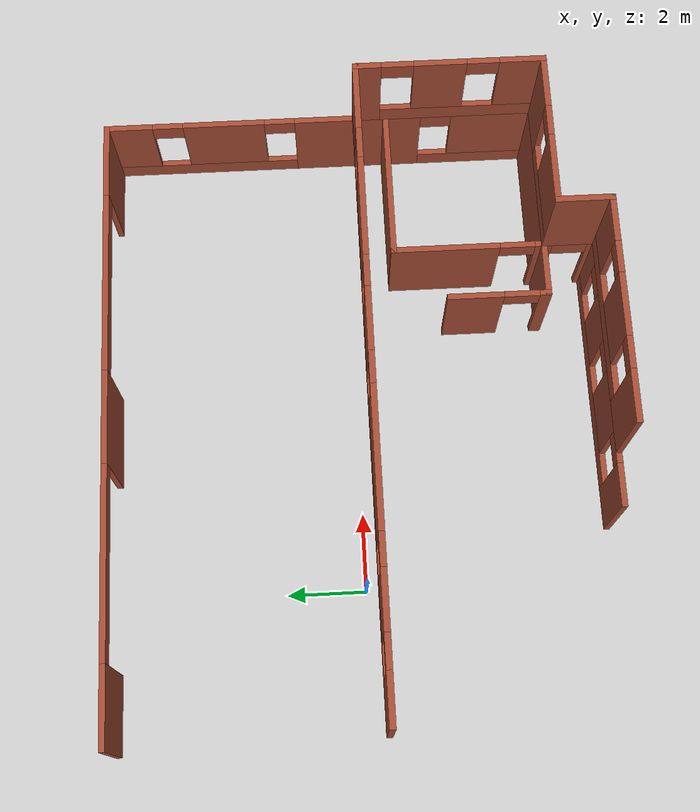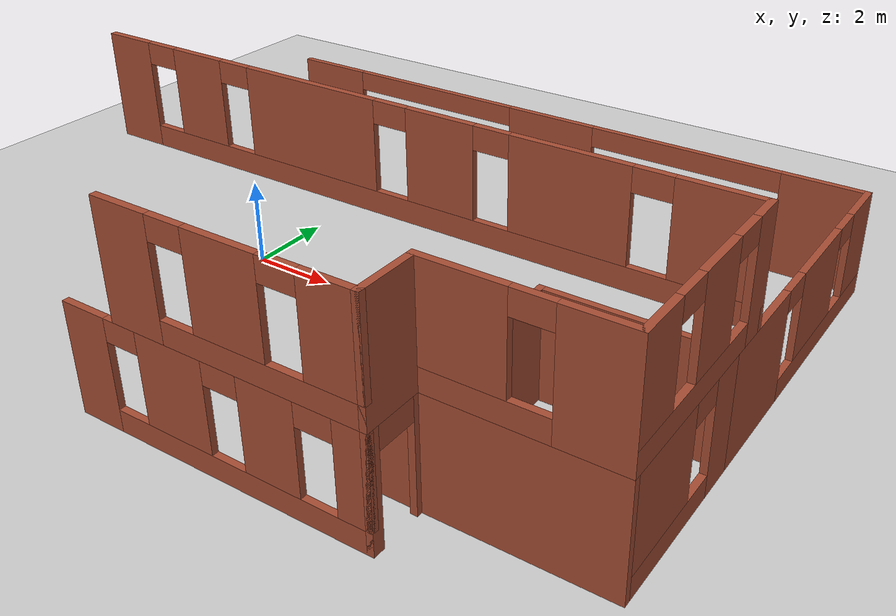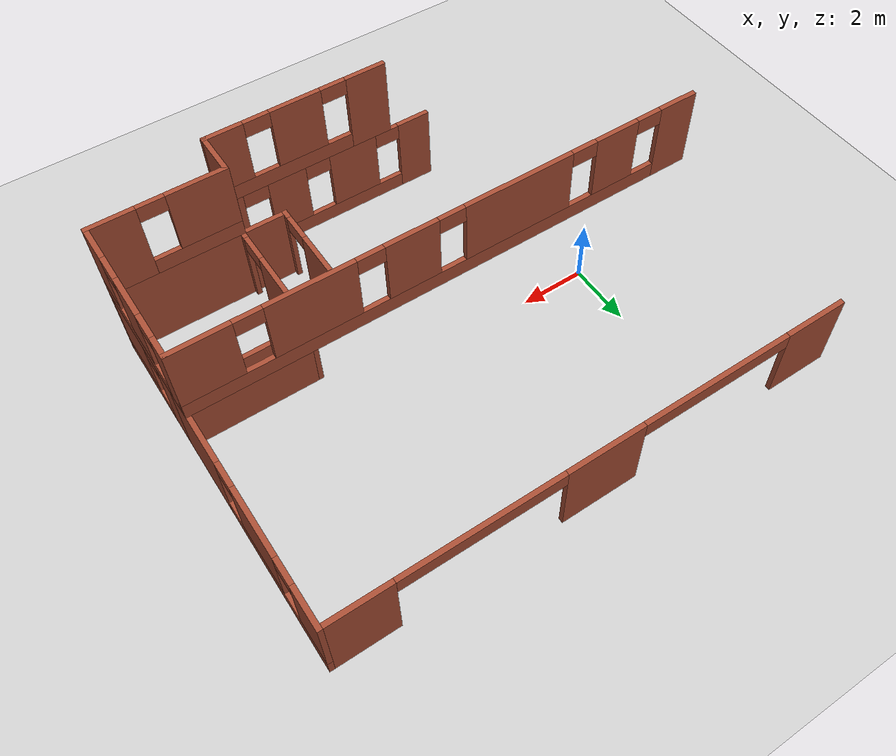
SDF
<sdf version="1.7">
 <world name="default">
  <model name="ground_plane">
   <static>1</static>
   <link name="link">
    <collision name="collision">
     <geometry><plane><normal>0 0 1</normal><size>100 100</size></plane></geometry>
     <surface>
      <contact><collide_bitmask>65535</collide_bitmask></contact>
      <friction><ode><mu>100</mu><mu2>50</mu2></ode></friction>
     </surface>
    </collision>
    <visual name="visual">
     <cast_shadows>0</cast_shadows>
     <geometry><plane><normal>0 0 1</normal><size>100 100</size></plane></geometry>
     <material>
      <script><uri>file://media/materials/scripts/gazebo.material</uri><name>Gazebo/Grey</name></script>
     </material>
    </visual>
   </link>
  </model>
  <model name="test_building">
   <link name="Wall_178">
    <collision name="Wall_178_Collision">
     <geometry><box><size>1.5 0.15 2.5</size></box></geometry>
     <pose>0 0 1.25 0 -0 0</pose>
    </collision>
    <visual name="Wall_178_Visual">
     <pose>0 0 1.25 0 -0 0</pose>
     <geometry><box><size>1.5 0.15 2.5</size></box></geometry>
     <material>
      <script><uri>file://media/materials/scripts/gazebo.material</uri><name>Gazebo/Bricks</name></script>
      <ambient>1 1 1 1</ambient>
     </material>
     <meta><layer>0</layer></meta>
    </visual>
    <pose>7.625 -4.95 0 0 -0 3.14159</pose>
   </link>
   <link name="Wall_181">
    <pose>6.95 -3.7 0 0 -0 -1.5708</pose>
    <visual name="Wall_181_Visual_0">
     <pose>-0.601522 0 1.25 0 -0 0</pose>
     <geometry><box><size>1.44713 0.15 2.5</size></box></geometry>
     <material>
      <script><uri>file://media/materials/scripts/gazebo.material</uri><name>Gazebo/Bricks</name></script>
      <ambient>1 1 1 1</ambient>
     </material>
     <meta><layer>0</layer></meta>
    </visual>
    <collision name="Wall_181_Collision_0">
     <geometry><box><size>1.44713 0.15 2.5</size></box></geometry>
     <pose>-0.601522 0 1.25 0 -0 0</pose>
    </collision>
    <visual name="Wall_181_Visual_1">
     <pose>1.17356 0 1.25 0 -0 0</pose>
     <geometry><box><size>0.303044 0.15 2.5</size></box></geometry>
     <material>
      <script><uri>file://media/materials/scripts/gazebo.material</uri><name>Gazebo/Bricks</name></script>
      <ambient>1 1 1 1</ambient>
     </material>
     <meta><layer>0</layer></meta>
    </visual>
    <collision name="Wall_181_Collision_1">
     <geometry><box><size>0.303044 0.15 2.5</size></box></geometry>
     <pose>1.17356 0 1.25 0 -0 0</pose>
    </collision>
    <visual name="Wall_181_Visual_2">
     <pose>0.572041 0 2.25 0 -0 0</pose>
     <geometry><box><size>0.9 0.15 0.5</size></box></geometry>
     <material>
      <script><uri>file://media/materials/scripts/gazebo.material</uri><name>Gazebo/Bricks</name></script>
      <ambient>1 1 1 1</ambient>
     </material>
     <meta><layer>0</layer></meta>
    </visual>
    <collision name="Wall_181_Collision_2">
     <geometry><box><size>0.9 0.15 0.5</size></box></geometry>
     <pose>0.572041 0 2.25 0 -0 0</pose>
    </collision>
   </link>
   <link name="Wall_190">
    <pose>4.85 -6.25 0 0 -0 0</pose>
    <visual name="Wall_190_Visual_0">
     <pose>-2.98077 0 1.25 0 -0 0</pose>
     <geometry><box><size>1.08846 0.15 2.5</size></box></geometry>
     <material>
      <script><uri>file://media/materials/scripts/gazebo.material</uri><name>Gazebo/Bricks</name></script>
      <ambient>1 1 1 1</ambient>
     </material>
     <meta><layer>0</layer></meta>
    </visual>
    <collision name="Wall_190_Collision_0">
     <geometry><box><size>1.08846 0.15 2.5</size></box></geometry>
     <pose>-2.98077 0 1.25 0 -0 0</pose>
    </collision>
    <visual name="Wall_190_Visual_1">
     <pose>0.54423 0 0.25 0 -0 0</pose>
     <geometry><box><size>5.96154 0.15 0.5</size></box></geometry>
     <material>
      <script><uri>file://media/materials/scripts/gazebo.material</uri><name>Gazebo/Bricks</name></script>
      <ambient>1 1 1 1</ambient>
     </material>
     <meta><layer>0</layer></meta>
    </visual>
    <collision name="Wall_190_Collision_1">
     <geometry><box><size>5.96154 0.15 0.5</size></box></geometry>
     <pose>0.54423 0 0.25 0 -0 0</pose>
    </collision>
    <visual name="Wall_190_Visual_2">
     <pose>-0.838263 0 1.5 0 -0 0</pose>
     <geometry><box><size>1.59655 0.15 2</size></box></geometry>
     <material>
      <script><uri>file://media/materials/scripts/gazebo.material</uri><name>Gazebo/Bricks</name></script>
      <ambient>1 1 1 1</ambient>
     </material>
     <meta><layer>0</layer></meta>
    </visual>
    <collision name="Wall_190_Collision_2">
     <geometry><box><size>1.59655 0.15 2</size></box></geometry>
     <pose>-0.838263 0 1.5 0 -0 0</pose>
    </collision>
    <visual name="Wall_190_Visual_3">
     <pose>1.38168 0 1.5 0 -0 0</pose>
     <geometry><box><size>1.24334 0.15 2</size></box></geometry>
     <material>
      <script><uri>file://media/materials/scripts/gazebo.material</uri><name>Gazebo/Bricks</name></script>
      <ambient>1 1 1 1</ambient>
     </material>
     <meta><layer>0</layer></meta>
    </visual>
    <collision name="Wall_190_Collision_3">
     <geometry><box><size>1.24334 0.15 2</size></box></geometry>
     <pose>1.38168 0 1.5 0 -0 0</pose>
    </collision>
    <visual name="Wall_190_Visual_4">
     <pose>3.16418 0 1.5 0 -0 0</pose>
     <geometry><box><size>0.721646 0.15 2</size></box></geometry>
     <material>
      <script><uri>file://media/materials/scripts/gazebo.material</uri><name>Gazebo/Bricks</name></script>
      <ambient>1 1 1 1</ambient>
     </material>
     <meta><layer>0</layer></meta>
    </visual>
    <collision name="Wall_190_Collision_4">
     <geometry><box><size>0.721646 0.15 2</size></box></geometry>
     <pose>3.16418 0 1.5 0 -0 0</pose>
    </collision>
    <visual name="Wall_190_Visual_5">
     <pose>-2.03654 0 2.25 0 -0 0</pose>
     <geometry><box><size>0.8 0.15 0.5</size></box></geometry>
     <material>
      <script><uri>file://media/materials/scripts/gazebo.material</uri><name>Gazebo/Bricks</name></script>
      <ambient>1 1 1 1</ambient>
     </material>
     <meta><layer>0</layer></meta>
    </visual>
    <collision name="Wall_190_Collision_5">
     <geometry><box><size>0.8 0.15 0.5</size></box></geometry>
     <pose>-2.03654 0 2.25 0 -0 0</pose>
    </collision>
    <visual name="Wall_190_Visual_6">
     <pose>0.360013 0 2.25 0 -0 0</pose>
     <geometry><box><size>0.8 0.15 0.5</size></box></geometry>
     <material>
      <script><uri>file://media/materials/scripts/gazebo.material</uri><name>Gazebo/Bricks</name></script>
      <ambient>1 1 1 1</ambient>
     </material>
     <meta><layer>0</layer></meta>
    </visual>
    <collision name="Wall_190_Collision_6">
     <geometry><box><size>0.8 0.15 0.5</size></box></geometry>
     <pose>0.360013 0 2.25 0 -0 0</pose>
    </collision>
    <visual name="Wall_190_Visual_7">
     <pose>2.40335 0 2.25 0 -0 0</pose>
     <geometry><box><size>0.8 0.15 0.5</size></box></geometry>
     <material>
      <script><uri>file://media/materials/scripts/gazebo.material</uri><name>Gazebo/Bricks</name></script>
      <ambient>1 1 1 1</ambient>
     </material>
     <meta><layer>0</layer></meta>
    </visual>
    <collision name="Wall_190_Collision_7">
     <geometry><box><size>0.8 0.15 0.5</size></box></geometry>
     <pose>2.40335 0 2.25 0 -0 0</pose>
    </collision>
   </link>
   <link name="Wall_191">
    <pose>8.3 -5.6 0 0 -0 1.5708</pose>
    <visual name="Wall_191_Visual_0">
     <pose>-0.587245 0 1.25 0 -0 0</pose>
     <geometry><box><size>0.27551 0.15 2.5</size></box></geometry>
     <material>
      <script><uri>file://media/materials/scripts/gazebo.material</uri><name>Gazebo/Bricks</name></script>
      <ambient>1 1 1 1</ambient>
     </material>
     <meta><layer>0</layer></meta>
    </visual>
    <collision name="Wall_191_Collision_0">
     <geometry><box><size>0.27551 0.15 2.5</size></box></geometry>
     <pose>-0.587245 0 1.25 0 -0 0</pose>
    </collision>
    <visual name="Wall_191_Visual_1">
     <pose>0.587755 0 1.25 0 -0 0</pose>
     <geometry><box><size>0.27449 0.15 2.5</size></box></geometry>
     <material>
      <script><uri>file://media/materials/scripts/gazebo.material</uri><name>Gazebo/Bricks</name></script>
      <ambient>1 1 1 1</ambient>
     </material>
     <meta><layer>0</layer></meta>
    </visual>
    <collision name="Wall_191_Collision_1">
     <geometry><box><size>0.27449 0.15 2.5</size></box></geometry>
     <pose>0.587755 0 1.25 0 -0 0</pose>
    </collision>
    <visual name="Wall_191_Visual_2">
     <pose>0.00051 0 2.25 0 -0 0</pose>
     <geometry><box><size>0.9 0.15 0.5</size></box></geometry>
     <material>
      <script><uri>file://media/materials/scripts/gazebo.material</uri><name>Gazebo/Bricks</name></script>
      <ambient>1 1 1 1</ambient>
     </material>
     <meta><layer>0</layer></meta>
    </visual>
    <collision name="Wall_191_Collision_2">
     <geometry><box><size>0.9 0.15 0.5</size></box></geometry>
     <pose>0.00051 0 2.25 0 -0 0</pose>
    </collision>
   </link>
   <link name="Wall_294">
    <pose>10.225 -4.95 2.5 0 -0 3.14159</pose>
    <visual name="Wall_294_Visual_0">
     <pose>-1.30227 0 1.25 0 -0 0</pose>
     <geometry><box><size>1.39531 0.15 2.5</size></box></geometry>
     <material>
      <script><uri>file://media/materials/scripts/gazebo.material</uri><name>Gazebo/Bricks</name></script>
      <ambient>1 1 1 1</ambient>
     </material>
     <meta><layer>1</layer></meta>
    </visual>
    <collision name="Wall_294_Collision_0">
     <geometry><box><size>1.39531 0.15 2.5</size></box></geometry>
     <pose>-1.30227 0 1.25 0 -0 0</pose>
    </collision>
    <visual name="Wall_294_Visual_1">
     <pose>0.697653 0 0.25 0 -0 0</pose>
     <geometry><box><size>2.60454 0.15 0.5</size></box></geometry>
     <material>
      <script><uri>file://media/materials/scripts/gazebo.material</uri><name>Gazebo/Bricks</name></script>
      <ambient>1 1 1 1</ambient>
     </material>
     <meta><layer>1</layer></meta>
    </visual>
    <collision name="Wall_294_Collision_1">
     <geometry><box><size>2.60454 0.15 0.5</size></box></geometry>
     <pose>0.697653 0 0.25 0 -0 0</pose>
    </collision>
    <visual name="Wall_294_Visual_2">
     <pose>1.09765 0 1.5 0 -0 0</pose>
     <geometry><box><size>1.80454 0.15 2</size></box></geometry>
     <material>
      <script><uri>file://media/materials/scripts/gazebo.material</uri><name>Gazebo/Bricks</name></script>
      <ambient>1 1 1 1</ambient>
     </material>
     <meta><layer>1</layer></meta>
    </visual>
    <collision name="Wall_294_Collision_2">
     <geometry><box><size>1.80454 0.15 2</size></box></geometry>
     <pose>1.09765 0 1.5 0 -0 0</pose>
    </collision>
    <visual name="Wall_294_Visual_3">
     <pose>-0.204615 0 2.25 0 -0 0</pose>
     <geometry><box><size>0.8 0.15 0.5</size></box></geometry>
     <material>
      <script><uri>file://media/materials/scripts/gazebo.material</uri><name>Gazebo/Bricks</name></script>
      <ambient>1 1 1 1</ambient>
     </material>
     <meta><layer>1</layer></meta>
    </visual>
    <collision name="Wall_294_Collision_3">
     <geometry><box><size>0.8 0.15 0.5</size></box></geometry>
     <pose>-0.204615 0 2.25 0 -0 0</pose>
    </collision>
   </link>
   <link name="Wall_329">
    <collision name="Wall_329_Collision">
     <geometry><box><size>1.45 0.15 2.5</size></box></geometry>
     <pose>0 0 1.25 0 -0 0</pose>
    </collision>
    <visual name="Wall_329_Visual">
     <pose>0 0 1.25 0 -0 0</pose>
     <geometry><box><size>1.45 0.15 2.5</size></box></geometry>
     <material>
      <script><uri>file://media/materials/scripts/gazebo.material</uri><name>Gazebo/Bricks</name></script>
      <ambient>1 1 1 1</ambient>
     </material>
     <meta><layer>1</layer></meta>
    </visual>
    <pose>8.3 -5.6 2.5 0 -0 1.5708</pose>
   </link>
   <link name="Wall_36">
    <pose>12.15 2.575 0 0 -0 1.5708</pose>
    <visual name="Wall_36_Visual_0">
     <pose>-2.51128 0 1.25 0 -0 0</pose>
     <geometry><box><size>2.47744 0.15 2.5</size></box></geometry>
     <material>
      <script><uri>file://media/materials/scripts/gazebo.material</uri><name>Gazebo/Bricks</name></script>
      <ambient>1 1 1 1</ambient>
     </material>
     <meta><layer>0</layer></meta>
    </visual>
    <collision name="Wall_36_Collision_0">
     <geometry><box><size>2.47744 0.15 2.5</size></box></geometry>
     <pose>-2.51128 0 1.25 0 -0 0</pose>
    </collision>
    <visual name="Wall_36_Visual_1">
     <pose>1.23872 0 0.25 0 -0 0</pose>
     <geometry><box><size>5.02256 0.15 0.5</size></box></geometry>
     <material>
      <script><uri>file://media/materials/scripts/gazebo.material</uri><name>Gazebo/Bricks</name></script>
      <ambient>1 1 1 1</ambient>
     </material>
     <meta><layer>0</layer></meta>
    </visual>
    <collision name="Wall_36_Collision_1">
     <geometry><box><size>5.02256 0.15 0.5</size></box></geometry>
     <pose>1.23872 0 0.25 0 -0 0</pose>
    </collision>
    <visual name="Wall_36_Visual_2">
     <pose>0.60055 0 1.5 0 -0 0</pose>
     <geometry><box><size>2.14622 0.15 2</size></box></geometry>
     <material>
      <script><uri>file://media/materials/scripts/gazebo.material</uri><name>Gazebo/Bricks</name></script>
      <ambient>1 1 1 1</ambient>
     </material>
     <meta><layer>0</layer></meta>
    </visual>
    <collision name="Wall_36_Collision_2">
     <geometry><box><size>2.14622 0.15 2</size></box></geometry>
     <pose>0.60055 0 1.5 0 -0 0</pose>
    </collision>
    <visual name="Wall_36_Visual_3">
     <pose>3.11183 0 1.5 0 -0 0</pose>
     <geometry><box><size>1.27634 0.15 2</size></box></geometry>
     <material>
      <script><uri>file://media/materials/scripts/gazebo.material</uri><name>Gazebo/Bricks</name></script>
      <ambient>1 1 1 1</ambient>
     </material>
     <meta><layer>0</layer></meta>
    </visual>
    <collision name="Wall_36_Collision_3">
     <geometry><box><size>1.27634 0.15 2</size></box></geometry>
     <pose>3.11183 0 1.5 0 -0 0</pose>
    </collision>
    <visual name="Wall_36_Visual_4">
     <pose>-0.872561 0 2.25 0 -0 0</pose>
     <geometry><box><size>0.8 0.15 0.5</size></box></geometry>
     <material>
      <script><uri>file://media/materials/scripts/gazebo.material</uri><name>Gazebo/Bricks</name></script>
      <ambient>1 1 1 1</ambient>
     </material>
     <meta><layer>0</layer></meta>
    </visual>
    <collision name="Wall_36_Collision_4">
     <geometry><box><size>0.8 0.15 0.5</size></box></geometry>
     <pose>-0.872561 0 2.25 0 -0 0</pose>
    </collision>
    <visual name="Wall_36_Visual_5">
     <pose>2.07366 0 2.25 0 -0 0</pose>
     <geometry><box><size>0.8 0.15 0.5</size></box></geometry>
     <material>
      <script><uri>file://media/materials/scripts/gazebo.material</uri><name>Gazebo/Bricks</name></script>
      <ambient>1 1 1 1</ambient>
     </material>
     <meta><layer>0</layer></meta>
    </visual>
    <collision name="Wall_36_Collision_5">
     <geometry><box><size>0.8 0.15 0.5</size></box></geometry>
     <pose>2.07366 0 2.25 0 -0 0</pose>
    </collision>
   </link>
   <link name="Wall_37">
    <pose>4.225 6.25 0 0 -0 3.14159</pose>
    <visual name="Wall_37_Visual_0">
     <pose>-6.99874 0 1.25 0 -0 0</pose>
     <geometry><box><size>2.00236 0.15 2.5</size></box></geometry>
     <material>
      <script><uri>file://media/materials/scripts/gazebo.material</uri><name>Gazebo/Bricks</name></script>
      <ambient>1 1 1 1</ambient>
     </material>
     <meta><layer>0</layer></meta>
    </visual>
    <collision name="Wall_37_Collision_0">
     <geometry><box><size>2.00236 0.15 2.5</size></box></geometry>
     <pose>-6.99874 0 1.25 0 -0 0</pose>
    </collision>
    <visual name="Wall_37_Visual_1">
     <pose>0.001723 0 1.25 0 -0 0</pose>
     <geometry><box><size>2.39856 0.15 2.5</size></box></geometry>
     <material>
      <script><uri>file://media/materials/scripts/gazebo.material</uri><name>Gazebo/Bricks</name></script>
      <ambient>1 1 1 1</ambient>
     </material>
     <meta><layer>0</layer></meta>
    </visual>
    <collision name="Wall_37_Collision_1">
     <geometry><box><size>2.39856 0.15 2.5</size></box></geometry>
     <pose>0.001723 0 1.25 0 -0 0</pose>
    </collision>
    <visual name="Wall_37_Visual_2">
     <pose>7.00046 0 1.25 0 -0 0</pose>
     <geometry><box><size>1.99892 0.15 2.5</size></box></geometry>
     <material>
      <script><uri>file://media/materials/scripts/gazebo.material</uri><name>Gazebo/Bricks</name></script>
      <ambient>1 1 1 1</ambient>
     </material>
     <meta><layer>0</layer></meta>
    </visual>
    <collision name="Wall_37_Collision_2">
     <geometry><box><size>1.99892 0.15 2.5</size></box></geometry>
     <pose>7.00046 0 1.25 0 -0 0</pose>
    </collision>
    <visual name="Wall_37_Visual_3">
     <pose>-3.59756 0 2.25 0 -0 0</pose>
     <geometry><box><size>4.8 0.15 0.5</size></box></geometry>
     <material>
      <script><uri>file://media/materials/scripts/gazebo.material</uri><name>Gazebo/Bricks</name></script>
      <ambient>1 1 1 1</ambient>
     </material>
     <meta><layer>0</layer></meta>
    </visual>
    <collision name="Wall_37_Collision_3">
     <geometry><box><size>4.8 0.15 0.5</size></box></geometry>
     <pose>-3.59756 0 2.25 0 -0 0</pose>
    </collision>
    <visual name="Wall_37_Visual_4">
     <pose>3.601 0 2.25 0 -0 0</pose>
     <geometry><box><size>4.8 0.15 0.5</size></box></geometry>
     <material>
      <script><uri>file://media/materials/scripts/gazebo.material</uri><name>Gazebo/Bricks</name></script>
      <ambient>1 1 1 1</ambient>
     </material>
     <meta><layer>0</layer></meta>
    </visual>
    <collision name="Wall_37_Collision_4">
     <geometry><box><size>4.8 0.15 0.5</size></box></geometry>
     <pose>3.601 0 2.25 0 -0 0</pose>
    </collision>
   </link>
   <link name="Wall_386">
    <pose>5.525 -6.25 2.5 0 -0 0</pose>
    <visual name="Wall_386_Visual_0">
     <pose>-2.20308 0 1.25 0 -0 0</pose>
     <geometry><box><size>1.29385 0.15 2.5</size></box></geometry>
     <material>
      <script><uri>file://media/materials/scripts/gazebo.material</uri><name>Gazebo/Bricks</name></script>
      <ambient>1 1 1 1</ambient>
     </material>
     <meta><layer>1</layer></meta>
    </visual>
    <collision name="Wall_386_Collision_0">
     <geometry><box><size>1.29385 0.15 2.5</size></box></geometry>
     <pose>-2.20308 0 1.25 0 -0 0</pose>
    </collision>
    <visual name="Wall_386_Visual_1">
     <pose>0.646924 0 0.25 0 -0 0</pose>
     <geometry><box><size>4.40615 0.15 0.5</size></box></geometry>
     <material>
      <script><uri>file://media/materials/scripts/gazebo.material</uri><name>Gazebo/Bricks</name></script>
      <ambient>1 1 1 1</ambient>
     </material>
     <meta><layer>1</layer></meta>
    </visual>
    <collision name="Wall_386_Collision_1">
     <geometry><box><size>4.40615 0.15 0.5</size></box></geometry>
     <pose>0.646924 0 0.25 0 -0 0</pose>
    </collision>
    <visual name="Wall_386_Visual_2">
     <pose>0.038779 0 1.5 0 -0 0</pose>
     <geometry><box><size>1.58986 0.15 2</size></box></geometry>
     <material>
      <script><uri>file://media/materials/scripts/gazebo.material</uri><name>Gazebo/Bricks</name></script>
      <ambient>1 1 1 1</ambient>
     </material>
     <meta><layer>1</layer></meta>
    </visual>
    <collision name="Wall_386_Collision_2">
     <geometry><box><size>1.58986 0.15 2</size></box></geometry>
     <pose>0.038779 0 1.5 0 -0 0</pose>
    </collision>
    <visual name="Wall_386_Visual_3">
     <pose>2.24186 0 1.5 0 -0 0</pose>
     <geometry><box><size>1.21629 0.15 2</size></box></geometry>
     <material>
      <script><uri>file://media/materials/scripts/gazebo.material</uri><name>Gazebo/Bricks</name></script>
      <ambient>1 1 1 1</ambient>
     </material>
     <meta><layer>1</layer></meta>
    </visual>
    <collision name="Wall_386_Collision_3">
     <geometry><box><size>1.21629 0.15 2</size></box></geometry>
     <pose>2.24186 0 1.5 0 -0 0</pose>
    </collision>
    <visual name="Wall_386_Visual_4">
     <pose>-1.15615 0 2.25 0 -0 0</pose>
     <geometry><box><size>0.8 0.15 0.5</size></box></geometry>
     <material>
      <script><uri>file://media/materials/scripts/gazebo.material</uri><name>Gazebo/Bricks</name></script>
      <ambient>1 1 1 1</ambient>
     </material>
     <meta><layer>1</layer></meta>
    </visual>
    <collision name="Wall_386_Collision_4">
     <geometry><box><size>0.8 0.15 0.5</size></box></geometry>
     <pose>-1.15615 0 2.25 0 -0 0</pose>
    </collision>
    <visual name="Wall_386_Visual_5">
     <pose>1.23371 0 2.25 0 -0 0</pose>
     <geometry><box><size>0.8 0.15 0.5</size></box></geometry>
     <material>
      <script><uri>file://media/materials/scripts/gazebo.material</uri><name>Gazebo/Bricks</name></script>
      <ambient>1 1 1 1</ambient>
     </material>
     <meta><layer>1</layer></meta>
    </visual>
    <collision name="Wall_386_Collision_5">
     <geometry><box><size>0.8 0.15 0.5</size></box></geometry>
     <pose>1.23371 0 2.25 0 -0 0</pose>
    </collision>
   </link>
   <link name="Wall_389">
    <pose>4.225 -0.3 2.5 0 -0 0</pose>
    <visual name="Wall_389_Visual_0">
     <pose>-7.37829 0 1.25 0 -0 0</pose>
     <geometry><box><size>1.24342 0.15 2.5</size></box></geometry>
     <material>
      <script><uri>file://media/materials/scripts/gazebo.material</uri><name>Gazebo/Bricks</name></script>
      <ambient>1 1 1 1</ambient>
     </material>
     <meta><layer>1</layer></meta>
    </visual>
    <collision name="Wall_389_Collision_0">
     <geometry><box><size>1.24342 0.15 2.5</size></box></geometry>
     <pose>-7.37829 0 1.25 0 -0 0</pose>
    </collision>
    <visual name="Wall_389_Visual_1">
     <pose>0.621712 0 0.25 0 -0 0</pose>
     <geometry><box><size>14.7566 0.15 0.5</size></box></geometry>
     <material>
      <script><uri>file://media/materials/scripts/gazebo.material</uri><name>Gazebo/Bricks</name></script>
      <ambient>1 1 1 1</ambient>
     </material>
     <meta><layer>1</layer></meta>
    </visual>
    <collision name="Wall_389_Collision_1">
     <geometry><box><size>14.7566 0.15 0.5</size></box></geometry>
     <pose>0.621712 0 0.25 0 -0 0</pose>
    </collision>
    <visual name="Wall_389_Visual_2">
     <pose>-5.24768 0 1.5 0 -0 0</pose>
     <geometry><box><size>1.41779 0.15 2</size></box></geometry>
     <material>
      <script><uri>file://media/materials/scripts/gazebo.material</uri><name>Gazebo/Bricks</name></script>
      <ambient>1 1 1 1</ambient>
     </material>
     <meta><layer>1</layer></meta>
    </visual>
    <collision name="Wall_389_Collision_2">
     <geometry><box><size>1.41779 0.15 2</size></box></geometry>
     <pose>-5.24768 0 1.5 0 -0 0</pose>
    </collision>
    <visual name="Wall_389_Visual_3">
     <pose>-2.02615 0 1.5 0 -0 0</pose>
     <geometry><box><size>3.42528 0.15 2</size></box></geometry>
     <material>
      <script><uri>file://media/materials/scripts/gazebo.material</uri><name>Gazebo/Bricks</name></script>
      <ambient>1 1 1 1</ambient>
     </material>
     <meta><layer>1</layer></meta>
    </visual>
    <collision name="Wall_389_Collision_3">
     <geometry><box><size>3.42528 0.15 2</size></box></geometry>
     <pose>-2.02615 0 1.5 0 -0 0</pose>
    </collision>
    <visual name="Wall_389_Visual_4">
     <pose>1.28142 0 1.5 0 -0 0</pose>
     <geometry><box><size>1.58986 0.15 2</size></box></geometry>
     <material>
      <script><uri>file://media/materials/scripts/gazebo.material</uri><name>Gazebo/Bricks</name></script>
      <ambient>1 1 1 1</ambient>
     </material>
     <meta><layer>1</layer></meta>
    </visual>
    <collision name="Wall_389_Collision_4">
     <geometry><box><size>1.58986 0.15 2</size></box></geometry>
     <pose>1.28142 0 1.5 0 -0 0</pose>
    </collision>
    <visual name="Wall_389_Visual_5">
     <pose>4.14926 0 1.5 0 -0 0</pose>
     <geometry><box><size>2.54581 0.15 2</size></box></geometry>
     <material>
      <script><uri>file://media/materials/scripts/gazebo.material</uri><name>Gazebo/Bricks</name></script>
      <ambient>1 1 1 1</ambient>
     </material>
     <meta><layer>1</layer></meta>
    </visual>
    <collision name="Wall_389_Collision_5">
     <geometry><box><size>2.54581 0.15 2</size></box></geometry>
     <pose>4.14926 0 1.5 0 -0 0</pose>
    </collision>
    <visual name="Wall_389_Visual_6">
     <pose>7.11108 0 1.5 0 -0 0</pose>
     <geometry><box><size>1.77784 0.15 2</size></box></geometry>
     <material>
      <script><uri>file://media/materials/scripts/gazebo.material</uri><name>Gazebo/Bricks</name></script>
      <ambient>1 1 1 1</ambient>
     </material>
     <meta><layer>1</layer></meta>
    </visual>
    <collision name="Wall_389_Collision_6">
     <geometry><box><size>1.77784 0.15 2</size></box></geometry>
     <pose>7.11108 0 1.5 0 -0 0</pose>
    </collision>
    <visual name="Wall_389_Visual_7">
     <pose>-6.35658 0 2.25 0 -0 0</pose>
     <geometry><box><size>0.8 0.15 0.5</size></box></geometry>
     <material>
      <script><uri>file://media/materials/scripts/gazebo.material</uri><name>Gazebo/Bricks</name></script>
      <ambient>1 1 1 1</ambient>
     </material>
     <meta><layer>1</layer></meta>
    </visual>
    <collision name="Wall_389_Collision_7">
     <geometry><box><size>0.8 0.15 0.5</size></box></geometry>
     <pose>-6.35658 0 2.25 0 -0 0</pose>
    </collision>
    <visual name="Wall_389_Visual_8">
     <pose>-4.13878 0 2.25 0 -0 0</pose>
     <geometry><box><size>0.8 0.15 0.5</size></box></geometry>
     <material>
      <script><uri>file://media/materials/scripts/gazebo.material</uri><name>Gazebo/Bricks</name></script>
      <ambient>1 1 1 1</ambient>
     </material>
     <meta><layer>1</layer></meta>
    </visual>
    <collision name="Wall_389_Collision_8">
     <geometry><box><size>0.8 0.15 0.5</size></box></geometry>
     <pose>-4.13878 0 2.25 0 -0 0</pose>
    </collision>
    <visual name="Wall_389_Visual_9">
     <pose>0.086491 0 2.25 0 -0 0</pose>
     <geometry><box><size>0.8 0.15 0.5</size></box></geometry>
     <material>
      <script><uri>file://media/materials/scripts/gazebo.material</uri><name>Gazebo/Bricks</name></script>
      <ambient>1 1 1 1</ambient>
     </material>
     <meta><layer>1</layer></meta>
    </visual>
    <collision name="Wall_389_Collision_9">
     <geometry><box><size>0.8 0.15 0.5</size></box></geometry>
     <pose>0.086491 0 2.25 0 -0 0</pose>
    </collision>
    <visual name="Wall_389_Visual_10">
     <pose>2.47635 0 2.25 0 -0 0</pose>
     <geometry><box><size>0.8 0.15 0.5</size></box></geometry>
     <material>
      <script><uri>file://media/materials/scripts/gazebo.material</uri><name>Gazebo/Bricks</name></script>
      <ambient>1 1 1 1</ambient>
     </material>
     <meta><layer>1</layer></meta>
    </visual>
    <collision name="Wall_389_Collision_10">
     <geometry><box><size>0.8 0.15 0.5</size></box></geometry>
     <pose>2.47635 0 2.25 0 -0 0</pose>
    </collision>
    <visual name="Wall_389_Visual_11">
     <pose>5.82216 0 2.25 0 -0 0</pose>
     <geometry><box><size>0.8 0.15 0.5</size></box></geometry>
     <material>
      <script><uri>file://media/materials/scripts/gazebo.material</uri><name>Gazebo/Bricks</name></script>
      <ambient>1 1 1 1</ambient>
     </material>
     <meta><layer>1</layer></meta>
    </visual>
    <collision name="Wall_389_Collision_11">
     <geometry><box><size>0.8 0.15 0.5</size></box></geometry>
     <pose>5.82216 0 2.25 0 -0 0</pose>
    </collision>
   </link>
   <link name="Wall_391">
    <pose>12.15 -2.625 2.5 0 -0 -1.5708</pose>
    <visual name="Wall_391_Visual_0">
     <pose>-2.04141 0 1.25 0 -0 0</pose>
     <geometry><box><size>0.716841 0.15 2.5</size></box></geometry>
     <material>
      <script><uri>file://media/materials/scripts/gazebo.material</uri><name>Gazebo/Bricks</name></script>
      <ambient>1 1 1 1</ambient>
     </material>
     <meta><layer>1</layer></meta>
    </visual>
    <collision name="Wall_391_Collision_0">
     <geometry><box><size>0.716841 0.15 2.5</size></box></geometry>
     <pose>-2.04141 0 1.25 0 -0 0</pose>
    </collision>
    <visual name="Wall_391_Visual_1">
     <pose>0.358421 0 0.25 0 -0 0</pose>
     <geometry><box><size>4.08282 0.15 0.5</size></box></geometry>
     <material>
      <script><uri>file://media/materials/scripts/gazebo.material</uri><name>Gazebo/Bricks</name></script>
      <ambient>1 1 1 1</ambient>
     </material>
     <meta><layer>1</layer></meta>
    </visual>
    <collision name="Wall_391_Collision_1">
     <geometry><box><size>4.08282 0.15 0.5</size></box></geometry>
     <pose>0.358421 0 0.25 0 -0 0</pose>
    </collision>
    <visual name="Wall_391_Visual_2">
     <pose>-0.221817 0 1.5 0 -0 0</pose>
     <geometry><box><size>1.32235 0.15 2</size></box></geometry>
     <material>
      <script><uri>file://media/materials/scripts/gazebo.material</uri><name>Gazebo/Bricks</name></script>
      <ambient>1 1 1 1</ambient>
     </material>
     <meta><layer>1</layer></meta>
    </visual>
    <collision name="Wall_391_Collision_2">
     <geometry><box><size>1.32235 0.15 2</size></box></geometry>
     <pose>-0.221817 0 1.5 0 -0 0</pose>
    </collision>
    <visual name="Wall_391_Visual_3">
     <pose>1.8196 0 1.5 0 -0 0</pose>
     <geometry><box><size>1.16047 0.15 2</size></box></geometry>
     <material>
      <script><uri>file://media/materials/scripts/gazebo.material</uri><name>Gazebo/Bricks</name></script>
      <ambient>1 1 1 1</ambient>
     </material>
     <meta><layer>1</layer></meta>
    </visual>
    <collision name="Wall_391_Collision_3">
     <geometry><box><size>1.16047 0.15 2</size></box></geometry>
     <pose>1.8196 0 1.5 0 -0 0</pose>
    </collision>
    <visual name="Wall_391_Visual_4">
     <pose>-1.28299 0 2.25 0 -0 0</pose>
     <geometry><box><size>0.8 0.15 0.5</size></box></geometry>
     <material>
      <script><uri>file://media/materials/scripts/gazebo.material</uri><name>Gazebo/Bricks</name></script>
      <ambient>1 1 1 1</ambient>
     </material>
     <meta><layer>1</layer></meta>
    </visual>
    <collision name="Wall_391_Collision_4">
     <geometry><box><size>0.8 0.15 0.5</size></box></geometry>
     <pose>-1.28299 0 2.25 0 -0 0</pose>
    </collision>
    <visual name="Wall_391_Visual_5">
     <pose>0.839358 0 2.25 0 -0 0</pose>
     <geometry><box><size>0.8 0.15 0.5</size></box></geometry>
     <material>
      <script><uri>file://media/materials/scripts/gazebo.material</uri><name>Gazebo/Bricks</name></script>
      <ambient>1 1 1 1</ambient>
     </material>
     <meta><layer>1</layer></meta>
    </visual>
    <collision name="Wall_391_Collision_5">
     <geometry><box><size>0.8 0.15 0.5</size></box></geometry>
     <pose>0.839358 0 2.25 0 -0 0</pose>
    </collision>
   </link>
   <link name="Wall_40">
    <pose>12.15 -3.025 0 0 -0 -1.5708</pose>
    <visual name="Wall_40_Visual_0">
     <pose>-1.49697 0 1.25 0 -0 0</pose>
     <geometry><box><size>1.00606 0.15 2.5</size></box></geometry>
     <material>
      <script><uri>file://media/materials/scripts/gazebo.material</uri><name>Gazebo/Bricks</name></script>
      <ambient>1 1 1 1</ambient>
     </material>
     <meta><layer>0</layer></meta>
    </visual>
    <collision name="Wall_40_Collision_0">
     <geometry><box><size>1.00606 0.15 2.5</size></box></geometry>
     <pose>-1.49697 0 1.25 0 -0 0</pose>
    </collision>
    <visual name="Wall_40_Visual_1">
     <pose>0.503032 0 0.25 0 -0 0</pose>
     <geometry><box><size>2.99394 0.15 0.5</size></box></geometry>
     <material>
      <script><uri>file://media/materials/scripts/gazebo.material</uri><name>Gazebo/Bricks</name></script>
      <ambient>1 1 1 1</ambient>
     </material>
     <meta><layer>0</layer></meta>
    </visual>
    <collision name="Wall_40_Collision_1">
     <geometry><box><size>2.99394 0.15 0.5</size></box></geometry>
     <pose>0.503032 0 0.25 0 -0 0</pose>
    </collision>
    <visual name="Wall_40_Visual_2">
     <pose>0.903032 0 1.5 0 -0 0</pose>
     <geometry><box><size>2.19394 0.15 2</size></box></geometry>
     <material>
      <script><uri>file://media/materials/scripts/gazebo.material</uri><name>Gazebo/Bricks</name></script>
      <ambient>1 1 1 1</ambient>
     </material>
     <meta><layer>0</layer></meta>
    </visual>
    <collision name="Wall_40_Collision_2">
     <geometry><box><size>2.19394 0.15 2</size></box></geometry>
     <pose>0.903032 0 1.5 0 -0 0</pose>
    </collision>
    <visual name="Wall_40_Visual_3">
     <pose>-0.593935 0 2.25 0 -0 0</pose>
     <geometry><box><size>0.8 0.15 0.5</size></box></geometry>
     <material>
      <script><uri>file://media/materials/scripts/gazebo.material</uri><name>Gazebo/Bricks</name></script>
      <ambient>1 1 1 1</ambient>
     </material>
     <meta><layer>0</layer></meta>
    </visual>
    <collision name="Wall_40_Collision_3">
     <geometry><box><size>0.8 0.15 0.5</size></box></geometry>
     <pose>-0.593935 0 2.25 0 -0 0</pose>
    </collision>
   </link>
   <link name="Wall_65">
    <collision name="Wall_65_Collision">
     <geometry><box><size>4 0.15 2.5</size></box></geometry>
     <pose>0 0 1.25 0 -0 0</pose>
    </collision>
    <visual name="Wall_65_Visual">
     <pose>0 0 1.25 0 -0 0</pose>
     <geometry><box><size>4 0.15 2.5</size></box></geometry>
     <material>
      <script><uri>file://media/materials/scripts/gazebo.material</uri><name>Gazebo/Bricks</name></script>
      <ambient>1 1 1 1</ambient>
     </material>
     <meta><layer>0</layer></meta>
    </visual>
    <pose>10.225 -4.95 0 0 -0 3.14159</pose>
   </link>
   <link name="Wall_66">
    <pose>8.3 -3.025 0 0 -0 1.5708</pose>
    <visual name="Wall_66_Visual_0">
     <pose>-1.84855 0 1.25 0 -0 0</pose>
     <geometry><box><size>0.302895 0.15 2.5</size></box></geometry>
     <material>
      <script><uri>file://media/materials/scripts/gazebo.material</uri><name>Gazebo/Bricks</name></script>
      <ambient>1 1 1 1</ambient>
     </material>
     <meta><layer>0</layer></meta>
    </visual>
    <collision name="Wall_66_Collision_0">
     <geometry><box><size>0.302895 0.15 2.5</size></box></geometry>
     <pose>-1.84855 0 1.25 0 -0 0</pose>
    </collision>
    <visual name="Wall_66_Visual_1">
     <pose>0.601447 0 1.25 0 -0 0</pose>
     <geometry><box><size>2.79711 0.15 2.5</size></box></geometry>
     <material>
      <script><uri>file://media/materials/scripts/gazebo.material</uri><name>Gazebo/Bricks</name></script>
      <ambient>1 1 1 1</ambient>
     </material>
     <meta><layer>0</layer></meta>
    </visual>
    <collision name="Wall_66_Collision_1">
     <geometry><box><size>2.79711 0.15 2.5</size></box></geometry>
     <pose>0.601447 0 1.25 0 -0 0</pose>
    </collision>
    <visual name="Wall_66_Visual_2">
     <pose>-1.2471 0 2.25 0 -0 0</pose>
     <geometry><box><size>0.9 0.15 0.5</size></box></geometry>
     <material>
      <script><uri>file://media/materials/scripts/gazebo.material</uri><name>Gazebo/Bricks</name></script>
      <ambient>1 1 1 1</ambient>
     </material>
     <meta><layer>0</layer></meta>
    </visual>
    <collision name="Wall_66_Collision_2">
     <geometry><box><size>0.9 0.15 0.5</size></box></geometry>
     <pose>-1.2471 0 2.25 0 -0 0</pose>
    </collision>
   </link>
   <link name="Wall_91">
    <collision name="Wall_91_Collision">
     <geometry><box><size>4 0.15 2.5</size></box></geometry>
     <pose>0 0 1.25 0 -0 0</pose>
    </collision>
    <visual name="Wall_91_Visual">
     <pose>0 0 1.25 0 -0 0</pose>
     <geometry><box><size>4 0.15 2.5</size></box></geometry>
     <material>
      <script><uri>file://media/materials/scripts/gazebo.material</uri><name>Gazebo/Bricks</name></script>
      <ambient>1 1 1 1</ambient>
     </material>
     <meta><layer>0</layer></meta>
    </visual>
    <pose>10.225 -1.1 0 0 -0 0</pose>
   </link>
   <static>1</static>
  </model>
 </world>
</sdf>
